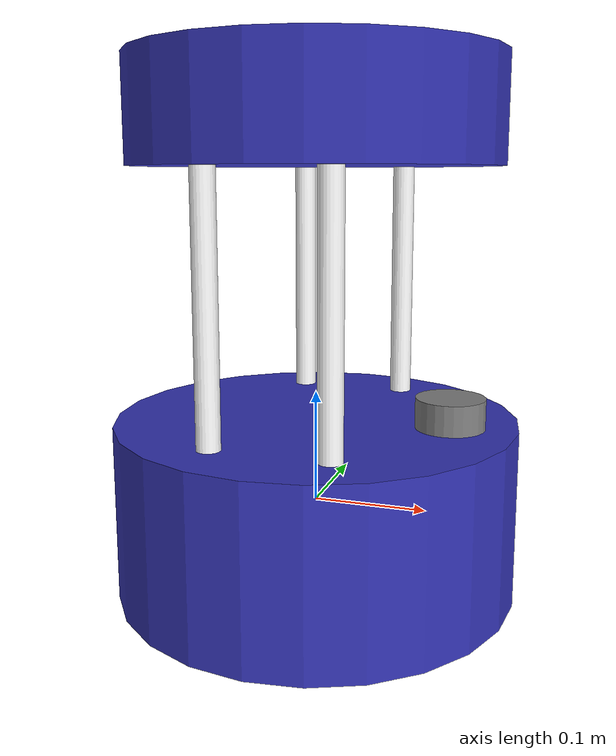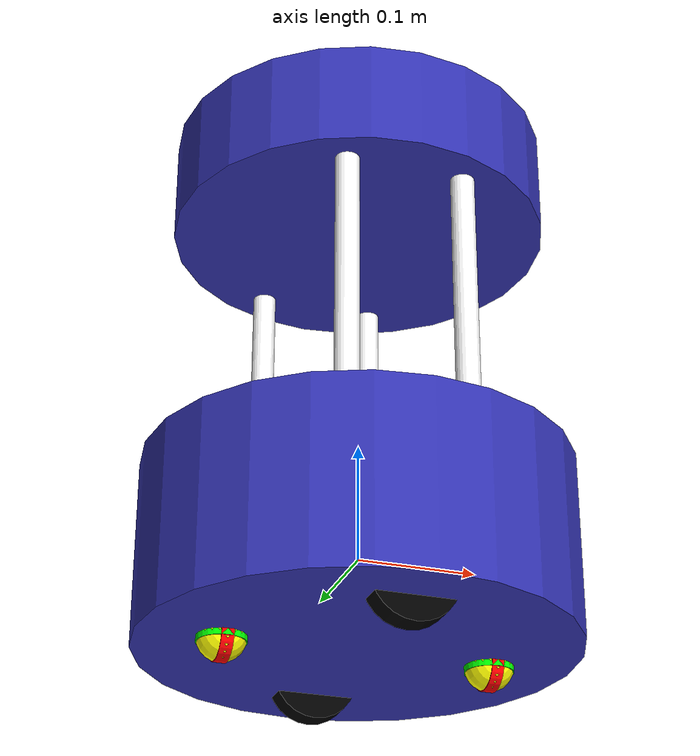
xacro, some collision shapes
<?xml version="1.0"?>
<robot xmlns:xacro="http://www.ros.org/wiki/xacro" name="barista_robot">

  <!-- Global Material Definitions -->
  <material name="Red">
    <color rgba="1.0 0.0 0.0 1.0"/>
  </material>

  <material name="Blue">
    <color rgba="0.0 0.0 1.0 1.0"/>
  </material>

  <material name="Black">
    <color rgba="0.0 0.0 0.0 1.0"/>
  </material>

  <material name="Green">
    <color rgba="0.0 1.0 0.0 1.0"/>
  </material>

  <material name="LightNavyBlue">
    <color rgba="0.2 0.2 0.7 1.0"/>
  </material>

  <material name="Gray">
    <color rgba="0.5 0.5 0.5 1.0"/>
  </material>

  <material name="White">
    <color rgba="1.0 1.0 1.0 1.0"/>
  </material>

  <material name="Purple">
    <color rgba="0.5 0.0 0.5 1.0"/>
  </material>

  <material name="Yellow">
    <color rgba="1.0 1.0 0.0 1.0"/>
  </material>

  <!-- Properties -->
  <xacro:property name="body_radius" value="0.178"/>
  <xacro:property name="body_length" value="0.155"/>
  <xacro:property name="cup_holder_tray_radius" value="0.16"/>
  <xacro:property name="cup_holder_tray_length" value="0.09"/>
  <xacro:property name="standoff_rods_radius" value="0.01"/>
  <xacro:property name="standoff_rods_length" value="0.22"/>
  <xacro:property name="wheel_radius" value="0.0352"/>
  <xacro:property name="wheel_length" value="0.0206"/>
  <xacro:property name="caster_wheel_radius" value="0.02"/>
  <xacro:property name="caster_wheel_length" value="0.01"/>
  <xacro:property name="joint_effort_limit" value="1000.0"/>
  <xacro:property name="joint_velocity_limit" value="100.0"/>
  <xacro:property name="damping_coefficient" value="0.0"/>
  <xacro:property name="friction_coefficient" value="0.1"/>
  <xacro:property name="cylinder_laser_scan_length" value="0.048"/>
  <xacro:property name="cylinder_laser_scan_radius" value="0.03"/>

  <!-- Define base_link with visual, collision, and inertial properties -->
  <link name="base_link">
    <!-- Optionally add visual, collision, and inertial properties if needed -->
  </link>

  <!-- Macros -->
  <!-- Macro for a Cylindrical Component -->
  <xacro:macro name="cylinder_link" params="name radius length material mass parent_link xyz rpy joint_type axis">
    <!-- Cylindrical Link -->
    <link name="${name}">
      <visual>
        <geometry>
          <cylinder radius="${radius}" length="${length}"/>
        </geometry>
        <material name="${material}"/>
      </visual>
      <collision>
        <geometry>
          <cylinder radius="${radius}" length="${length}"/>
        </geometry>
      </collision>
      <inertial>
        <mass value="${mass}"/>
        <origin xyz="0 0 0" />
        <inertia
          ixx="${(1.0/12.0) * mass * (3.0 * (radius * radius) + (length * length))}"
          ixy="0.0"
          ixz="0.0"
          iyy="${(1.0/12.0) * mass * (3.0 * (radius * radius) + (length * length))}"
          iyz="0.0"
          izz="${(1.0/2.0) * mass * (radius * radius)}"/>
      </inertial>
    </link>
    <!-- Joint to Attach to Parent -->
    <joint name="${name}_joint" type="${joint_type}">
      <origin xyz="${xyz}" rpy="${rpy}"/>
      <parent link="${parent_link}"/>
      <child link="${name}"/>
      <xacro:if value="${joint_type != 'fixed'}">
        <axis xyz="${axis}"/>
      </xacro:if>
    </joint>
  </xacro:macro>

  <!-- Macro for Caster Wheel -->
  <xacro:macro name="caster_wheel" params="name pos_x pos_y pos_z color_yaw color_pitch color_roll parent_link mass radius length">
    <!-- Caster Wheel Link (Yaw) -->
    <link name="${name}_yaw_link">
      <visual>
        <origin rpy="0 1.5707 1.5707" xyz="0 0 0"/>
        <geometry>
          <cylinder length="${length}" radius="${radius}"/>
        </geometry>
        <material name="${color_yaw}"/>
      </visual>
      <collision>
        <origin rpy="0 1.5707 1.5707" xyz="0 0 0"/>
        <geometry>
          <cylinder length="${length}" radius="${radius}"/>
        </geometry>
      </collision>
      <inertial>
        <origin rpy="0 1.5707 1.5707" xyz="0 0 0"/>
        <mass value="${mass}"/>
        <inertia
          ixx="${(1.0/4.0) * mass * (radius * radius) + (1.0/12.0) * mass * (length * length)}"
          ixy="0.0"
          ixz="0.0"
          iyy="${(1.0/4.0) * mass * (radius * radius) + (1.0/12.0) * mass * (length * length)}"
          iyz="0.0"
          izz="${(1.0/2.0) * mass * (radius * radius)}"/>
      </inertial>
    </link>
    <!-- Yaw Joint -->
    <joint name="${name}_yaw_joint" type="continuous">
      <origin rpy="0 1.5707 1.5707" xyz="${pos_x} ${pos_y} ${pos_z}" />
      <parent link="${parent_link}"/>
      <child link="${name}_yaw_link"/>
      <axis xyz="0 0 1"/>
      <limit effort="${joint_effort_limit}" velocity="${joint_velocity_limit}"/>
      <dynamics damping="${damping_coefficient}" friction="${friction_coefficient}"/>
    </joint>

    <!-- Caster Wheel (Roll) -->
    <link name="${name}_roll_link">
      <visual>
        <origin rpy="0 1.5707 1.5707" xyz="0 0 0"/>
        <geometry>
          <cylinder length="${length}" radius="${radius}"/>
        </geometry>
        <material name="${color_roll}"/>
      </visual>
      <collision>
        <origin rpy="0 1.5707 1.5707" xyz="0 0 0"/>
        <geometry>
          <cylinder length="${length}" radius="${radius}"/>
        </geometry>
      </collision>
      <inertial>
        <origin rpy="0 1.5707 1.5707" xyz="0 0 0"/>
        <mass value="${mass}"/>
        <inertia
          ixx="${(1.0/4.0) * mass * (radius * radius) + (1.0/12.0) * mass * (length * length)}"
          ixy="0.0"
          ixz="0.0"
          iyy="${(1.0/4.0) * mass * (radius * radius) + (1.0/12.0) * mass * (length * length)}"
          iyz="0.0"
          izz="${(1.0/2.0) * mass * (radius * radius)}"/>
      </inertial>
    </link>
    <!-- Roll Joint -->
    <joint name="${name}_roll_joint" type="continuous">
      <origin rpy="0 1.5707 1.5707" xyz="0 0 0"/>
      <parent link="${name}_yaw_link"/>
      <child link="${name}_roll_link"/>
      <axis xyz="1 0 0"/>
      <limit effort="${joint_effort_limit}" velocity="${joint_velocity_limit}"/>
      <dynamics damping="${damping_coefficient}" friction="${friction_coefficient}"/>
    </joint>

    <!-- Caster Wheel (Pitch) -->
    <link name="${name}_pitch_link">
      <visual>
        <origin rpy="0 1.5707 1.5707" xyz="0 0 0"/>
        <geometry>
          <sphere radius="${radius}"/>
        </geometry>
        <material name="${color_pitch}"/>
      </visual>
      <collision>
        <origin rpy="0 1.5707 1.5707" xyz="0 0 0"/>
        <geometry>
          <sphere radius="${radius}"/>
        </geometry>
      </collision>
      <inertial>
        <origin rpy="0 1.5707 1.5707" xyz="0 0 0"/>
        <mass value="${mass}"/>
        <inertia
          ixx="${(2.0/5.0) * mass * (radius * radius)}"
          ixy="0.0"
          ixz="0.0"
          iyy="${(2.0/5.0) * mass * (radius * radius)}"
          iyz="0.0"
          izz="${(2.0/5.0) * mass * (radius * radius)}"/>
      </inertial>
    </link>
    <!-- Pitch Joint -->
    <joint name="${name}_pitch_joint" type="continuous">
      <origin rpy="0 1.5707 1.5707" xyz="0 0 0"/>
      <parent link="${name}_roll_link"/>
      <child link="${name}_pitch_link"/>
      <axis xyz="0 1 0"/>
      <limit effort="${joint_effort_limit}" velocity="${joint_velocity_limit}"/>
      <dynamics damping="${damping_coefficient}" friction="${friction_coefficient}"/>
    </joint>
  </xacro:macro>

  <!-- Macro for Sensor LIDAR -->
  <xacro:macro name="laser_sensor" params="name color length radius mass parent_link xyz rpy joint_type axis">
    <link name="${name}">
      <visual>
        <origin rpy="0 0 0" xyz="0 0 0"/>
        <geometry>
          <mesh filename="package://barista_robot_description/meshes/hokuyo_urg_04lx.dae" scale="1.0 1.0 1.0"/>
        </geometry>
        <material name="${color}"/>
      </visual>
      <collision>
        <origin rpy="0 0 0" xyz="0 0 0"/>
        <geometry>
          <cylinder length="${length}" radius="${radius}"/>
        </geometry>
      </collision>
      <inertial>
        <mass value="${mass}"/>
        <origin xyz="0 0 0"/>
        <inertia
          ixx="${(1.0/12.0) * mass * (3.0 * (radius * radius) + (length * length))}"
          ixy="0.0"
          ixz="0.0"
          iyy="${(1.0/12.0) * mass * (3.0 * (radius * radius) + (length * length))}"
          iyz="0.0"
          izz="${(1.0/2.0) * mass * (radius * radius)}"/>
      </inertial>
    </link>

    <joint name="${name}_joint" type="${joint_type}">
      <origin xyz="${xyz}" rpy="${rpy}"/>
      <parent link="${parent_link}"/>
      <child link="${name}"/>
    </joint>

    <!-- Ray frame link -->
    <link name="${name}_ray_link"/>
    <joint name="${name}_ray_joint" type="fixed">
      <origin xyz="0 0 ${length}" rpy="0 0 0"/>
      <parent link="${name}"/>
      <child link="${name}_ray_link"/>
    </joint>

    <!-- Laser Sensor Plugin -->
    <gazebo reference="${name}_ray_link">
      <sensor name="${name}_sensor" type="ray">
        <pose>0 0 0 0 0 0</pose>
        <ray>
          <scan>
            <horizontal>
              <samples>720</samples>
              <resolution>1.0</resolution>
              <min_angle>-3.14</min_angle>
              <max_angle>3.14</max_angle>
            </horizontal>
          </scan>
          <range>
            <min>0.1</min>
            <max>5.0</max>
          </range>
        </ray>
        <visualize>true</visualize>
        <always_on>true</always_on>
        <update_rate>50.0</update_rate>
        <plugin name="${name}_gazebo_plugin" filename="libgazebo_ros_ray_sensor.so">
          <ros>
            <remapping>~/out:=scan</remapping>
          </ros>
          <output_type>sensor_msgs/LaserScan</output_type>
          <frame_name>${name}_ray_link</frame_name>
        </plugin>
      </sensor>
    </gazebo>
  </xacro:macro>

  <!-- Create Chassis -->
  <xacro:cylinder_link name="chassis"
                      radius="${body_radius}"
                      length="${body_length}"
                      material="LightNavyBlue"
                      mass="0.5"
                      parent_link="base_link"
                      xyz="0 0 0"
                      rpy="0 0 0"
                      joint_type="fixed"
                      axis="0 0 0"/>

  <gazebo reference="chassis">
    <material>Gazebo/Blue</material>
  </gazebo>

  <!-- Create Cup Holder Tray -->
  <xacro:cylinder_link name="cup_holder_tray"
                      radius="${cup_holder_tray_radius}"
                      length="${cup_holder_tray_length}"
                      material="LightNavyBlue"
                      mass="0.2"
                      parent_link="chassis"
                      xyz="0 0 0.3425"
                      rpy="0 0 0"
                      joint_type="fixed"
                      axis="0 0 0"/>

  <gazebo reference="cup_holder_tray">
    <material>Gazebo/Blue</material>
  </gazebo>

  <!-- Create Standoff Rods -->
  <xacro:cylinder_link name="standoff_rod_1"
                      radius="${standoff_rods_radius}"
                      length="${standoff_rods_length}"
                      material="White"
                      mass="0.07"
                      parent_link="chassis"
                      xyz="0.05 0.12 0.1875"
                      rpy="0 0 0"
                      joint_type="fixed"
                      axis="0 0 0"/>

  <xacro:cylinder_link name="standoff_rod_2"
                      radius="${standoff_rods_radius}"
                      length="${standoff_rods_length}"
                      material="White"
                      mass="0.07"
                      parent_link="chassis"
                      xyz="-0.05 0.12 0.1875"
                      rpy="0 0 0"
                      joint_type="fixed"
                      axis="0 0 0"/>

  <xacro:cylinder_link name="standoff_rod_3"
                      radius="${standoff_rods_radius}"
                      length="${standoff_rods_length}"
                      material="White"
                      mass="0.07"
                      parent_link="chassis"
                      xyz="0.05 -0.12 0.1875"
                      rpy="0 0 0"
                      joint_type="fixed"
                      axis="0 0 0"/>

  <xacro:cylinder_link name="standoff_rod_4"
                      radius="${standoff_rods_radius}"
                      length="${standoff_rods_length}"
                      material="White"
                      mass="0.07"
                      parent_link="chassis"
                      xyz="-0.05 -0.12 0.1875"
                      rpy="0 0 0"
                      joint_type="fixed"
                      axis="0 0 0"/>

  <gazebo reference="standoff_rod_1">
    <material>Gazebo/White</material>
  </gazebo>

  <gazebo reference="standoff_rod_2">
    <material>Gazebo/White</material>
  </gazebo>

  <gazebo reference="standoff_rod_3">
    <material>Gazebo/White</material>
  </gazebo>

  <gazebo reference="standoff_rod_4">
    <material>Gazebo/White</material>
  </gazebo>

  <!-- Wheels -->
  <xacro:cylinder_link name="wheel_right"
                      radius="${wheel_radius}"
                      length="${wheel_length}"
                      material="Black"
                      mass="0.1"
                      parent_link="chassis"
                      xyz="0 -0.12 -0.0623"
                      rpy="0 1.5708 1.5708"
                      joint_type="continuous"
                      axis="0 0 1"/>

  <xacro:cylinder_link name="wheel_left"
                      radius="${wheel_radius}"
                      length="${wheel_length}"
                      material="Black"
                      mass="0.1"
                      parent_link="chassis"
                      xyz="0 0.12 -0.0623"
                      rpy="0 1.5708 1.5708"
                      joint_type="continuous"
                      axis="0 0 1"/>

  <!-- Gazebo configuration for Wheels -->
  <gazebo reference="wheel_right">
    <kp>1000000000000000000000000000.0</kp>
    <kd>1000000000000000000000000000.0</kd>
    <mu1>0.8</mu1>
    <mu2>0.8</mu2>
    <material>Gazebo/Black</material>
  </gazebo>

  <gazebo reference="wheel_left">
    <kp>1000000000000000000000000000.0</kp>
    <kd>1000000000000000000000000000.0</kd>
    <mu1>0.8</mu1>
    <mu2>0.8</mu2>
    <material>Gazebo/Black</material>
  </gazebo>

  <!-- Caster Wheels -->
  <xacro:caster_wheel name="front_caster_wheel"
                      parent_link="chassis"
                      radius="${caster_wheel_radius}"
                      length="${caster_wheel_length}"
                      pos_x="0.11" pos_y="0" pos_z="-0.0775"
                      color_yaw="Red"
                      color_roll="Green"
                      color_pitch="Yellow"
                      mass="0.07"/>

  <xacro:caster_wheel name="back_caster_wheel"
                      parent_link="chassis"
                      radius="${caster_wheel_radius}"
                      length="${caster_wheel_length}"
                      pos_x="-0.11" pos_y="0" pos_z="-0.0775"
                      color_yaw="Red"
                      color_roll="Green"
                      color_pitch="Yellow"
                      mass="0.07"/>

  <!-- Gazebo configuration for Caster Wheels -->

  <gazebo reference="front_caster_wheel_yaw_link">
    <material>Gazebo/Red</material>
  </gazebo>

  <gazebo reference="back_caster_wheel_yaw_link">
    <material>Gazebo/Red</material>
  </gazebo>

  <gazebo reference="front_caster_wheel_roll_link">
    <material>Gazebo/Green</material>
  </gazebo>

  <gazebo reference="back_caster_wheel_roll_link">
    <material>Gazebo/Green</material>
  </gazebo>

  <gazebo reference="front_caster_wheel_pitch_link">
    <kp>1000000000000000000000000000.0</kp>
    <kd>1000000000000000000000000000.0</kd>
    <mu1>0.5</mu1>
    <mu2>0.5</mu2>
    <material>Gazebo/Yellow</material>
  </gazebo>

  <gazebo reference="back_caster_wheel_pitch_link">
    <kp>1000000000000000000000000000.0</kp>
    <kd>1000000000000000000000000000.0</kd>
    <mu1>0.5</mu1>
    <mu2>0.5</mu2>
    <material>Gazebo/Yellow</material>
  </gazebo>

  <!-- Plugin -->

  <!-- Joint State Publisher -->
  <gazebo>
    <plugin name="barista_robot_joint_state" filename="libgazebo_ros_joint_state_publisher.so">
      <ros>
        <remapping>~/out:=joint_state</remapping>
      </ros>
      <update_rate>30</update_rate>

      <joint_name>wheel_left_joint</joint_name>
      <joint_name>wheel_right_joint</joint_name>
      <joint_name>front_caster_wheel_yaw_joint</joint_name>
      <joint_name>back_caster_wheel_yaw_joint</joint_name>
      <joint_name>front_caster_wheel_roll_joint</joint_name>
      <joint_name>back_caster_wheel_roll_joint</joint_name>
      <joint_name>front_caster_wheel_pitch_joint</joint_name>
      <joint_name>back_caster_wheel_pitch_joint</joint_name>

    </plugin>
  </gazebo>

  <!-- Differential Drive Plugin -->
  <gazebo>
    <plugin name="differential_drive_controller" filename="libgazebo_ros_diff_drive.so">
      <!-- Wheels -->
      <left_joint>wheel_left_joint</left_joint>
      <right_joint>wheel_right_joint</right_joint>

      <!-- Kinematics -->
      <wheel_separation>0.24</wheel_separation>
      <wheel_diameter>0.0704</wheel_diameter>

      <!-- Limits -->
      <max_wheel_torque>0.5</max_wheel_torque>
      <max_wheel_acceleration>2.0</max_wheel_acceleration>

      <!-- Output -->
      <publish_odom>true</publish_odom>
      <publish_odom_tf>true</publish_odom_tf>

      <odometry_frame>odom</odometry_frame>
      <robot_base_frame>base_link</robot_base_frame>
    </plugin>
  </gazebo>

  <!-- LIDAR Laser Plugin -->
  <xacro:laser_sensor
    name="lidar"
    color="Gray"
    length="${cylinder_laser_scan_length}"
    radius="${cylinder_laser_scan_radius}"
    mass="0.05"
    parent_link="chassis"
    xyz="0.12 0 0.08"
    rpy="0 0 0"
    joint_type="fixed"
    axis="0 0 0"/>

  <gazebo reference="lidar">
    <material>Gazebo/Gray</material>
  </gazebo>
</robot>
